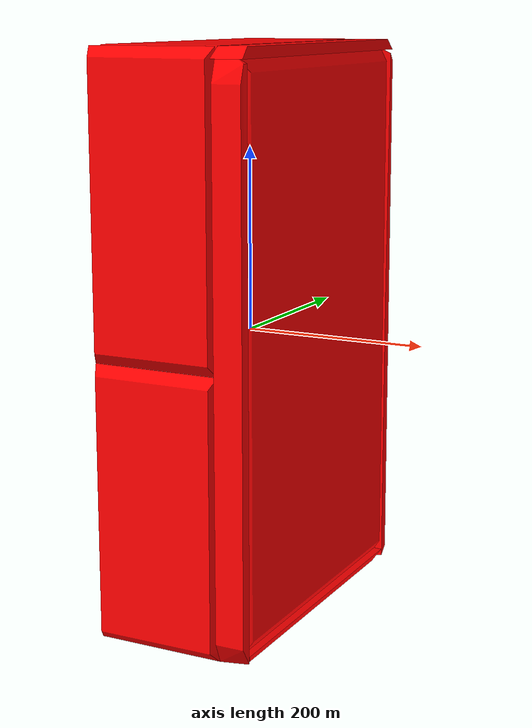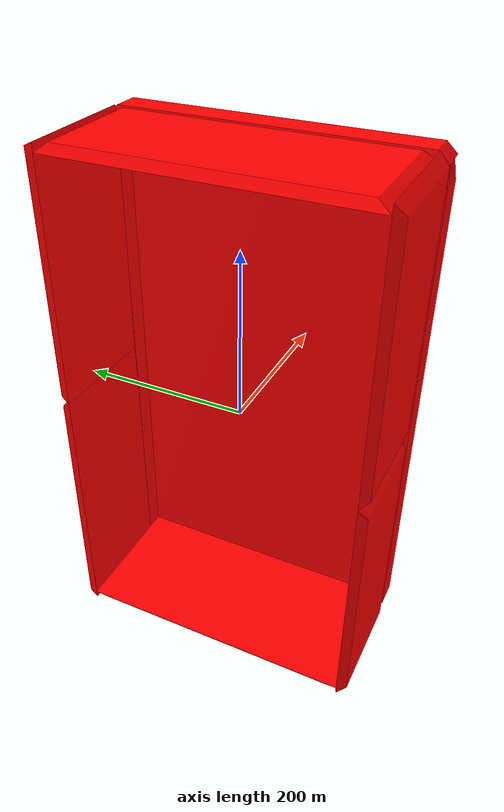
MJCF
<?xml version="1.0" encoding="utf-8"?>
<mujoco>
	<asset>
		<mesh file="holdouts/bin_packing/collision/0_bin_20200804.stl" name="bin_packing0"></mesh>
		<mesh file="holdouts/bin_packing/collision/1_bin_20200804.stl" name="bin_packing1"></mesh>
		<mesh file="holdouts/bin_packing/collision/2_bin_20200804.stl" name="bin_packing2"></mesh>
		<mesh file="holdouts/bin_packing/collision/3_bin_20200804.stl" name="bin_packing3"></mesh>
		<mesh file="holdouts/bin_packing/collision/4_bin_20200804.stl" name="bin_packing4"></mesh>
		<mesh file="holdouts/bin_packing/collision/5_bin_20200804.stl" name="bin_packing5"></mesh>
		<mesh file="holdouts/bin_packing/collision/6_bin_20200804.stl" name="bin_packing6"></mesh>
		<mesh file="holdouts/bin_packing/collision/7_bin_20200804.stl" name="bin_packing7"></mesh>
		<mesh file="holdouts/bin_packing/collision/8_bin_20200804.stl" name="bin_packing8"></mesh>
		<mesh file="holdouts/bin_packing/collision/9_bin_20200804.stl" name="bin_packing9"></mesh>
		<material name="block_mat" rgba="1.0 0 0 1.0" specular="0.25" shininess="0.10" reflectance="0.10"></material>
	</asset>
	<worldbody>
		<body>
			<geom type="mesh" mesh="bin_packing0" material="block_mat"></geom>
			<geom type="mesh" mesh="bin_packing1" material="block_mat"></geom>
			<geom type="mesh" mesh="bin_packing2" material="block_mat"></geom>
			<geom type="mesh" mesh="bin_packing3" material="block_mat"></geom>
			<geom type="mesh" mesh="bin_packing4" material="block_mat"></geom>
			<geom type="mesh" mesh="bin_packing5" material="block_mat"></geom>
			<geom type="mesh" mesh="bin_packing6" material="block_mat"></geom>
			<geom type="mesh" mesh="bin_packing7" material="block_mat"></geom>
			<geom type="mesh" mesh="bin_packing8" material="block_mat"></geom>
			<geom type="mesh" mesh="bin_packing9" material="block_mat"></geom>
			<joint type="free"></joint>
		</body>
	</worldbody>
</mujoco>
